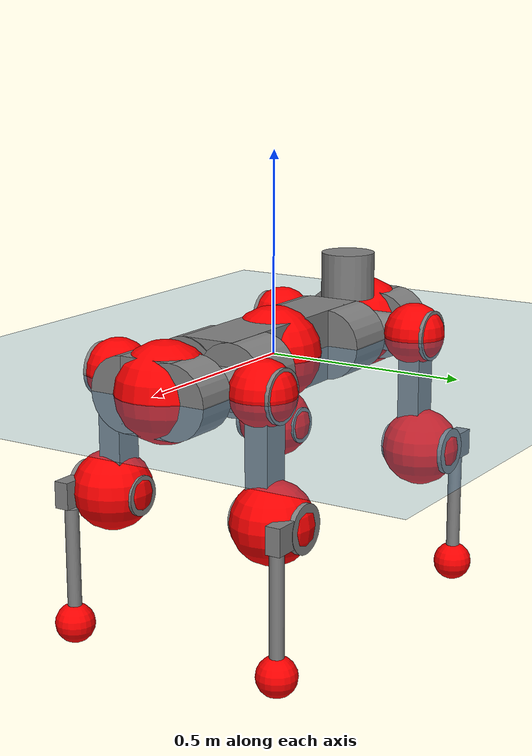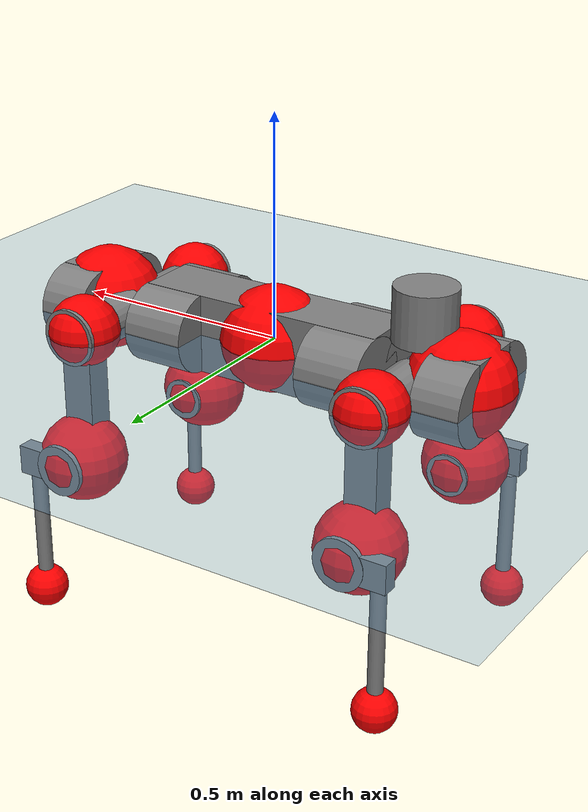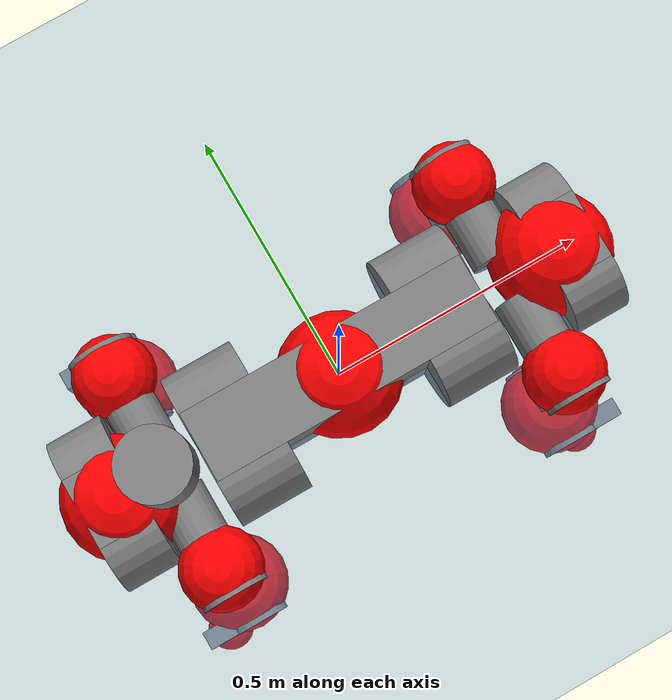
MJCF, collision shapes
<mujoco model="anymal_c">
  <compiler angle="radian" assetdir="assets" balanceinertia="true" inertiafromgeom="false"/>

  <option timestep="0.005" density="1.2" viscosity="2e-05"/>

  <size nkey="1"/>

  <visual>
    <quality shadowsize="8192"/>
    <map shadowclip="0.5"/>
  </visual>

  <default>
    <default class="/">
      <material specular="0" shininess="0.25"/>
      <geom contype="0" conaffinity="0" group="1" solref="-1000 -80"/>
      <site size="0.01 0.005 0.005" group="5"/>
      <general forcelimited="true" forcerange="-80 80" biastype="affine" gainprm="80" biasprm="0 -80 -2"/>
      <default class="anymal_c">
        <joint armature="0.01" damping="0.01" frictionloss="0.1"/>
        <default class="visual">
          <geom type="mesh" group="2"/>
          <default class="visual_zflip"/>
        </default>
        <default class="collision">
          <geom type="cylinder" group="3"/>
          <default class="foot">
            <geom size="0.03 0 0" type="sphere" condim="6" priority="1" friction="0.8 0.02 0.01" solimp="0.015 1 0.03"/>
          </default>
        </default>
      </default>
      <default class="reward_collision_sphere">
        <geom group="5" rgba="1 0 0 1"/>
      </default>
    </default>
  </default>

  <asset>
    <texture type="skybox" colorspace="auto" name="//unnamed_texture_0" builtin="gradient" rgb1="0.95 0.95 0.95" rgb2="0.95 0.95 0.95" width="100" height="600"/>
    <texture type="2d" colorspace="auto" name="texplane" builtin="checker" rgb1="0.345 0.575 0.748" rgb2="0.345 0.575 0.748" markrgb="1 1 1" width="512" height="512"/>
    <texture type="2d" colorspace="linear" name="base" file="base.png"/>
    <texture type="2d" colorspace="linear" name="top_shell" file="top_shell.png"/>
    <texture type="2d" colorspace="linear" name="bottom_shell" file="bottom_shell.png"/>
    <texture type="2d" colorspace="linear" name="remote" file="remote.png"/>
    <texture type="2d" colorspace="linear" name="hatch" file="hatch.png"/>
    <texture type="2d" colorspace="linear" name="handle" file="handle.png"/>
    <texture type="2d" colorspace="linear" name="face" file="face.png"/>
    <texture type="2d" colorspace="linear" name="battery" file="battery.png"/>
    <texture type="2d" colorspace="linear" name="lidar_cage" file="lidar_cage.png"/>
    <texture type="2d" colorspace="linear" name="depth_camera" file="depth_camera.png"/>
    <texture type="2d" colorspace="linear" name="wide_angle_camera" file="wide_angle_camera.png"/>
    <texture type="2d" colorspace="linear" name="lidar" file="lidar.png"/>
    <texture type="2d" colorspace="linear" name="drive" file="drive.png"/>
    <texture type="2d" colorspace="linear" name="hip_l" file="hip_l.png"/>
    <texture type="2d" colorspace="linear" name="shank_l" file="shank_l.png"/>
    <texture type="2d" colorspace="linear" name="foot" file="foot.png"/>
    <texture type="2d" colorspace="linear" name="thigh" file="thigh.png"/>
    <texture type="2d" colorspace="linear" name="shank_r" file="shank_r.png"/>
    <texture type="2d" colorspace="linear" name="hip_r" file="hip_r.png"/>
    <material name="MatPlane" class="/" texture="texplane" texuniform="true" texrepeat="2 2" specular="0.9" shininess="0.5"/>
    <material name="black_plastic" class="/" rgba="0.007 0.007 0.007 1"/>
    <material name="green" class="/" rgba="0.052 0.178 0.033 1"/>
    <material name="red" class="/" rgba="0.178 0.006 0.005 1"/>
    <material name="yellow" class="/" rgba="0.178 0.119 0.006 1"/>
    <material name="lwl" class="/" rgba="0.8 0.8 0.8 1"/>
    <material name="base" class="/" texture="base"/>
    <material name="top_shell" class="/" texture="top_shell"/>
    <material name="bottom_shell" class="/" texture="bottom_shell"/>
    <material name="hip_l" class="/" texture="hip_l"/>
    <material name="thigh" class="/" texture="thigh"/>
    <material name="shank_l" class="/" texture="shank_l"/>
    <material name="foot" class="/" texture="foot"/>
    <material name="hip_r" class="/" texture="hip_r"/>
    <material name="shank" class="/" texture="shank_r"/>
    <material name="hatch" class="/" texture="hatch"/>
    <material name="remote" class="/" texture="remote"/>
    <material name="handle" class="/" texture="handle"/>
    <material name="face" class="/" texture="face"/>
    <material name="depth_camera" class="/" texture="depth_camera"/>
    <material name="wide_angle_camera" class="/" texture="wide_angle_camera"/>
    <material name="battery" class="/" texture="battery"/>
    <material name="lidar_cage" class="/" texture="lidar_cage"/>
    <material name="lidar" class="/" texture="lidar"/>
    <material name="drive" class="/" texture="drive"/>
    <mesh name="base_0" class="/" file="base_0.obj"/>
    <mesh name="base_1" class="/" file="base_1.obj"/>
    <mesh name="base_2" class="/" file="base_2.obj"/>
    <mesh name="base_3" class="/" file="base_3.obj"/>
    <mesh name="base_4" class="/" file="base_4.obj"/>
    <mesh name="base_5" class="/" file="base_5.obj"/>
    <mesh name="top_shell" class="/" file="top_shell.obj"/>
    <mesh name="bottom_shell" class="/" file="bottom_shell.obj"/>
    <mesh name="remote" class="/" file="remote.obj"/>
    <mesh name="handle" class="/" file="handle.obj"/>
    <mesh name="face" class="/" file="face.obj"/>
    <mesh name="wide_angle_camera" class="/" file="wide_angle_camera.obj"/>
    <mesh name="depth_camera" class="/" file="depth_camera.obj"/>
    <mesh name="battery" class="/" file="battery.obj"/>
    <mesh name="lidar_cage" class="/" file="lidar_cage.obj"/>
    <mesh name="lidar" class="/" file="lidar.obj"/>
    <mesh name="drive" class="/" file="drive.obj"/>
    <mesh name="hip_l" class="/" file="hip_l.obj"/>
    <mesh name="thigh" class="/" file="thigh.obj"/>
    <mesh name="shank_l" class="/" file="shank_l.obj"/>
    <mesh name="foot" class="/" file="foot.obj"/>
    <mesh name="hip_r" class="/" file="hip_r.obj"/>
    <mesh name="hatch" class="/" file="hatch.obj"/>
    <mesh name="shank_r" class="/" file="shank_r.obj"/>
  </asset>

  <worldbody>
    <geom name="floor" class="/" size="100 100 0.125" type="plane" group="0" material="MatPlane"/>
    <light name="toplight_shadow" class="/" pos="0 0 5" dir="0.0990148 0.0990148 -0.990148" type="directional" ambient="0.04 0.04 0.04" diffuse="0.55 0.55 0.55" specular="0.12 0.12 0.12"/>
    <light name="toplight_fill" class="/" pos="0 0 5" dir="0.0990148 0.0990148 -0.990148" type="directional" castshadow="false" ambient="0.04 0.04 0.04" diffuse="0.3 0.3 0.3" specular="0.08 0.08 0.08"/>
    <body name="trunk" childclass="anymal_c" pos="5.73533e-05 -0.00115111 0.00101794" quat="1 0.00053747 0.000230454 9.01366e-05">
      <inertial pos="0.00174723 -0.00268558 0.0523523" quat="0.500166 0.499731 0.498598 0.501501" mass="18.2718" diaginertia="0.59789 0.399861 0.272741"/>
      <joint name="//unnamed_joint_0" type="free" armature="0" damping="0" frictionloss="0"/>
      <geom name="//unnamed_geom_1" class="visual" material="green" mesh="base_0"/>
      <geom name="//unnamed_geom_2" class="visual" material="yellow" mesh="base_1"/>
      <geom name="//unnamed_geom_3" class="visual" material="red" mesh="base_2"/>
      <geom name="//unnamed_geom_4" class="visual" material="black_plastic" mesh="base_3"/>
      <geom name="//unnamed_geom_5" class="visual" material="lwl" mesh="base_4"/>
      <geom name="//unnamed_geom_6" class="visual" material="base" mesh="base_5"/>
      <geom name="trunk_1" class="collision" size="0.287081 0.0692954 0.0890941" type="box"/>
      <geom name="trunk_2" class="collision" size="0.0890941 0.0717703" pos="0.217454 0.0645161 0" quat="0.707107 0 0.707107 0"/>
      <geom name="trunk_3" class="collision" size="0.0890941 0.0717703" pos="-0.217454 0.0645161 0" quat="0.707107 0 0.707107 0"/>
      <geom name="trunk_4" class="collision" size="0.0890941 0.0717703" pos="0.217454 -0.0645161 0" quat="0.707107 0 0.707107 0"/>
      <geom name="trunk_5" class="collision" size="0.0890941 0.0717703" pos="-0.217454 -0.0645161 0" quat="0.707107 0 0.707107 0"/>
      <geom name="//unnamed_geom_12" class="visual" material="top_shell" mesh="top_shell"/>
      <geom name="//unnamed_geom_13" class="visual" material="bottom_shell" mesh="bottom_shell"/>
      <geom name="//unnamed_geom_14" class="visual" material="remote" mesh="remote"/>
      <geom name="//unnamed_geom_15" class="visual" material="handle" mesh="handle"/>
      <geom name="//unnamed_geom_16" class="visual" pos="0.414412 0 0" quat="1 0 0 0" material="face" mesh="face"/>
      <geom name="trunk_6" class="collision" size="0.0544464 0.0692954 0.0890941" pos="0.4694 0 0" type="box"/>
      <geom name="//unnamed_geom_18" class="collision" size="0.0890941 0.0544464" pos="0.4694 0.0645161 0" quat="0.707107 0 0.707107 0"/>
      <geom name="//unnamed_geom_19" class="collision" size="0.0890941 0.0544464" pos="0.4694 -0.0645161 0" quat="0.707107 0 0.707107 0"/>
      <geom name="//unnamed_geom_20" class="visual" pos="0.461553 0 -0.0309812" quat="0.965926 0 0.258819 0" material="depth_camera" mesh="depth_camera"/>
      <geom name="//unnamed_geom_21" class="visual" pos="0.51289 0 0.0156939" material="wide_angle_camera" mesh="wide_angle_camera"/>
      <geom name="//unnamed_geom_22" class="visual_zflip" pos="-0.414412 0 0" quat="0 0 0 1" material="face" mesh="face"/>
      <geom name="trunk_7" class="collision" size="0.0544464 0.0692954 0.0890941" pos="-0.4694 0 0" quat="0 0 0 1" type="box"/>
      <geom name="//unnamed_geom_24" class="collision" size="0.0890941 0.0544464" pos="-0.4694 -0.0645161 0" quat="0 -0.707107 0 0.707107"/>
      <geom name="//unnamed_geom_25" class="collision" size="0.0890941 0.0544464" pos="-0.4694 0.0645161 0" quat="0 -0.707107 0 0.707107"/>
      <geom name="//unnamed_geom_26" class="visual" pos="-0.461553 0 -0.0309812" quat="0 -0.258819 0 0.965926" material="depth_camera" mesh="depth_camera"/>
      <geom name="//unnamed_geom_27" class="visual_zflip" pos="-0.51289 0 0.0156939" quat="0 0 0 1" material="wide_angle_camera" mesh="wide_angle_camera"/>
      <geom name="//unnamed_geom_28" class="visual" material="battery" mesh="battery"/>
      <geom name="//unnamed_geom_29" class="visual" pos="0 0.0694469 0.0300857" quat="0.683013 -0.183013 0.183013 0.683013" material="depth_camera" mesh="depth_camera"/>
      <geom name="//unnamed_geom_30" class="visual" pos="0 -0.0694469 0.0300857" quat="0.683013 0.183013 0.183013 -0.683013" material="depth_camera" mesh="depth_camera"/>
      <geom name="//unnamed_geom_31" class="visual" pos="-0.363922 0 0.0770544" quat="1 0 0 0" material="lidar_cage" mesh="lidar_cage"/>
      <geom name="trunk_8" class="collision" size="0.0692954 0.0593961" pos="-0.363922 0 0.139956"/>
      <geom name="//unnamed_geom_33" class="visual" pos="-0.363922 -3.06943e-05 0.149077" quat="0.707107 0 0 -0.707107" material="lidar" mesh="lidar"/>
      <geom name="//unnamed_geom_34" class="visual" pos="0.299836 0.0958975 -2.18559e-09" quat="0.258819 0.965926 0 0" material="drive" mesh="drive"/>
      <geom name="//unnamed_geom_35" class="visual" pos="0.299836 -0.0958975 2.18559e-09" quat="0.258819 -0.965926 0 0" material="drive" mesh="drive"/>
      <geom name="//unnamed_geom_36" class="visual" pos="-0.299836 0.0958975 2.18559e-09" quat="0 0 0.965926 -0.258819" material="drive" mesh="drive"/>
      <geom name="//unnamed_geom_37" class="visual" pos="-0.299836 -0.0958975 -2.18559e-09" quat="0 0 -0.965926 -0.258819" material="drive" mesh="drive"/>
      <geom name="//unnamed_geom_38" class="visual" pos="0.115975 0 0.0765302" quat="1 0 0 0" material="hatch" mesh="hatch"/>
      <geom name="//unnamed_geom_39" class="reward_collision_sphere" size="0.118792"/>
      <geom name="//unnamed_geom_40" class="reward_collision_sphere" size="0.118792" pos="0.449904 0 0"/>
      <geom name="//unnamed_geom_41" class="reward_collision_sphere" size="0.118792" pos="-0.449904 0 0"/>
      <site name="imu" pos="0.247737 0.0104615 0.0512909" size="0.00989935"/>
      <camera name="track" pos="0 -1.84332 0" quat="0.707107 0.707107 0 0" mode="trackcom"/>
      <camera name="ego_camera" pos="0.449904 0 -0.0419344" quat="-0.5 -0.5 0.5 0.5"/>
      <body name="LF_HIP" pos="0.30027 0.095895 -0.000214363" quat="0.258939 0.965894 0.000224021 -0.00014551">
        <inertial pos="0.0566896 -0.0158059 -0.00873591" quat="-0.128641 0.704552 -0.146854 0.68227" mass="2.67657" diaginertia="0.00574878 0.00324537 0.00409341"/>
        <joint name="LF_HAA" pos="0 0 0" axis="0.999999 0.000740759 0.000870453" range="-0.721026 0.505719" armature="0.00951103" damping="0.0132824" frictionloss="0.100412"/>
        <geom name="//unnamed_geom_42" class="visual" pos="0 -0.000128568 2.11172e-05" quat="0.258819 -0.965926 0 0" material="hip_l" mesh="hip_l"/>
        <geom name="//unnamed_geom_43" class="visual" pos="0.0598872 -0.0715824 -0.0422653" quat="0.183013 -0.683013 0.683013 0.183013" material="drive" mesh="drive"/>
        <geom name="//unnamed_geom_44" class="collision" size="0.0494967 0.0692954" pos="0.0598872 -0.0110229 -0.00723892" quat="-0.353553 -0.612372 0.612372 -0.353553"/>
        <body name="LF_THIGH" pos="0.0623132 -0.0672884 -0.0453908" quat="0.18293 -0.683425 0.682943 0.181811">
          <inertial pos="0.0311385 0.00272822 -0.256977" quat="0.992824 -0.00414263 -0.0832332 0.0857643" mass="2.97333" diaginertia="0.0292035 0.0204507 0.00528243"/>
          <joint name="LF_HFE" pos="0 0 0" axis="0.999969 -0.00503779 0.00606715" range="-3.17123 3.08746" armature="0.011209" damping="0.00624454" frictionloss="0.0971669"/>
          <geom name="//unnamed_geom_45" class="visual" pos="0.00155443 2.44942e-06 0" quat="0.707107 0 0 -0.707107" material="thigh" mesh="thigh"/>
          <geom name="//unnamed_geom_46" class="collision" size="0.0643458 0.0395974" pos="0.0399915 0 0" quat="0.5 0.5 -0.5 -0.5"/>
          <geom name="//unnamed_geom_47" class="collision" size="0.0371226 0.029698 0.139892" pos="0.0299936 0 -0.148148" quat="0.707107 0 0 -0.707107" type="box"/>
          <geom name="//unnamed_geom_48" class="visual" pos="0.100279 0 -0.298782" quat="1 0 0 0" material="drive" mesh="drive"/>
          <geom name="//unnamed_geom_49" class="collision" size="0.0494967 0.0692954" pos="0.0302935 0 -0.298782" quat="0.707107 0 0.707107 0"/>
          <geom name="//unnamed_geom_50" class="reward_collision_sphere" size="0.0791948" pos="0.0249947 0 0"/>
          <body name="LF_SHANK" pos="0.100189 -0.000482214 -0.297336" quat="1 -0.000127951 -0.000137632 -1.95491e-05">
            <inertial pos="0.00305829 -0.0572351 -0.0866108" quat="0.992505 -0.119097 -0.00320294 -0.027194" mass="0.557926" diaginertia="0.0100493 0.00626702 0.00139784"/>
            <joint name="LF_KFE" pos="0 0 0" axis="0.999996 0.00267407 -0.000113556" range="-3.08711 3.17746" armature="0.00973682" damping="0" frictionloss="0.0941787"/>
            <geom name="//unnamed_geom_51" class="visual" pos="0.000506867 0.00270264 0" quat="0.707107 0 0 -0.707107" material="shank_l" mesh="shank_l"/>
            <geom name="LF_kfe_act" class="collision" size="0.0593961 0.0197987" pos="0.0199957 0 0" quat="0.5 0.5 -0.5 -0.5"/>
            <geom name="//unnamed_geom_53" class="collision" size="0.0569203 0.0334103 0.0188088" pos="0.0199957 -0.0529945 0" quat="0.5 0.5 -0.5 -0.5" type="box"/>
            <geom name="//unnamed_geom_54" class="visual" pos="0.0130471 -0.0801889 -0.354314" quat="0.382683 0 0 -0.92388" material="foot" mesh="foot"/>
            <geom name="LF_calf" class="collision" size="0.0173239 0.13983" pos="0.0130472 -0.0810599 -0.177157" quat="0.707107 0 0 -0.707107"/>
            <geom name="LF_foot" class="foot" size="0.0306725" pos="0.0130472 -0.0810599 -0.330726" quat="0.707107 0 0 -0.707107"/>
            <geom name="//unnamed_geom_57" class="reward_collision_sphere" size="0.0989935" pos="-0.0499893 0 0"/>
            <geom name="//unnamed_geom_58" class="reward_collision_sphere" size="0.0494967" pos="0.0130472 -0.0810599 -0.330726"/>
            <site name="LF_foot" class="foot" pos="0.0130472 -0.0810599 -0.330726" quat="0.707107 0 0 -0.707107" size="0.00989935"/>
          </body>
        </body>
      </body>
      <body name="RF_HIP" pos="0.297678 -0.0960321 -0.00245021" quat="0.25842 -0.966033 0.000310437 3.30364e-05">
        <inertial pos="0.0569614 0.0138852 -0.00848323" quat="0.143042 0.683445 0.120894 0.705568" mass="2.72351" diaginertia="0.00575161 0.00326722 0.00412206"/>
        <joint name="RF_HAA" pos="0 0 0" axis="0.999991 0.000141605 0.00428387" range="-0.485289 0.768714" armature="0.0100716" damping="0.0121977" frictionloss="0.0937511"/>
        <geom name="//unnamed_geom_59" class="visual" pos="0 0.000128567 2.11172e-05" quat="0.258819 0.965926 0 0" material="hip_r" mesh="hip_r"/>
        <geom name="//unnamed_geom_60" class="visual" pos="0.0598872 0.0715824 -0.0422653" quat="0.183013 0.683013 0.683013 -0.183013" material="drive" mesh="drive"/>
        <geom name="//unnamed_geom_61" class="collision" size="0.0494967 0.0692954" pos="0.0598872 0.0110229 -0.00723892" quat="-0.353553 0.612372 0.612372 0.353553"/>
        <body name="RF_THIGH" pos="0.0608234 0.0687512 -0.0464488" quat="0.183043 0.683266 0.682762 -0.182973">
          <inertial pos="0.0309851 -0.00112915 -0.254786" quat="0.992541 -0.00676778 -0.0792174 0.0924228" mass="2.93176" diaginertia="0.0297013 0.01981 0.00527972"/>
          <joint name="RF_HFE" pos="0 0 0" axis="0.999997 0.00244512 -0.000453336" stiffness="0.0149304" range="-3.14605 3.12163" armature="0.00879334" damping="0.0219596" frictionloss="0.0949347"/>
          <geom name="//unnamed_geom_62" class="visual" pos="0.00155443 2.44942e-06 0" quat="0.707107 0 0 -0.707107" material="thigh" mesh="thigh"/>
          <geom name="//unnamed_geom_63" class="collision" size="0.0643458 0.0395974" pos="0.0399915 0 0" quat="0.5 0.5 0.5 0.5"/>
          <geom name="//unnamed_geom_64" class="collision" size="0.0371226 0.029698 0.139892" pos="0.0299936 0 -0.148148" quat="0.707107 0 0 0.707107" type="box"/>
          <geom name="//unnamed_geom_65" class="visual" pos="0.100279 0 -0.298782" quat="1 0 0 0" material="drive" mesh="drive"/>
          <geom name="//unnamed_geom_66" class="collision" size="0.0494967 0.0692954" pos="0.0302935 0 -0.298782" quat="0.707107 0 0.707107 0"/>
          <geom name="//unnamed_geom_67" class="reward_collision_sphere" size="0.0791948" pos="0.0249947 0 0"/>
          <body name="RF_SHANK" pos="0.10152 -0.000247686 -0.296622" quat="1 -0.000241991 -0.000371583 -0.000138939">
            <inertial pos="0.00490666 0.0575915 -0.0838553" quat="0.99295 0.115354 -0.00302562 0.0270906" mass="0.589411" diaginertia="0.0105806 0.00645833 0.00145115"/>
            <joint name="RF_KFE" pos="0 0 0" axis="0.999995 -0.00178583 0.00251035" range="-3.14878 3.11596" armature="0.01013" damping="0" frictionloss="0.102991"/>
            <geom name="//unnamed_geom_68" class="visual" pos="0.000506864 -0.00270263 0" quat="0.707107 0 0 0.707107" material="shank" mesh="shank_r"/>
            <geom name="RF_kfe_act" class="collision" size="0.0593961 0.0197987" pos="0.0199957 0 0" quat="0.5 0.5 0.5 0.5"/>
            <geom name="//unnamed_geom_70" class="collision" size="0.0569203 0.0334103 0.0188088" pos="0.0199957 0.0529945 0" quat="0.5 0.5 0.5 0.5" type="box"/>
            <geom name="//unnamed_geom_71" class="visual" pos="0.0130473 0.0801889 -0.354314" quat="0.382683 0 0 0.92388" material="foot" mesh="foot"/>
            <geom name="RF_calf" class="collision" size="0.0173239 0.13983" pos="0.0130472 0.0810599 -0.177157" quat="0.707107 0 0 0.707107"/>
            <geom name="RF_foot" class="foot" size="0.0267639" pos="0.0130472 0.0810599 -0.330726" quat="0.707107 0 0 0.707107"/>
            <geom name="//unnamed_geom_74" class="reward_collision_sphere" size="0.0989935" pos="-0.0499893 0 0"/>
            <geom name="//unnamed_geom_75" class="reward_collision_sphere" size="0.0494967" pos="0.0130472 0.0810599 -0.330726"/>
            <site name="RF_foot" class="foot" pos="0.0130472 0.0810599 -0.330726" quat="0.707107 0 0 0.707107" size="0.00989935"/>
          </body>
        </body>
      </body>
      <body name="LH_HIP" pos="-0.299352 0.0963511 0.001691" quat="0.000347232 -0.000176122 0.965898 -0.258922">
        <inertial pos="0.0559707 0.0149418 -0.00806483" quat="0.137874 0.68137 0.129779 0.707024" mass="2.63073" diaginertia="0.00596223 0.00330145 0.00422661"/>
        <joint name="LH_HAA" pos="0 0 0" axis="0.999988 0.00221803 0.00436188" stiffness="0.00285371" range="-0.451161 0.741155" armature="0.0103619" damping="0.00887808" frictionloss="0.107914"/>
        <geom name="//unnamed_geom_76" class="visual" pos="0 0.000128567 2.11172e-05" quat="-0.258819 -0.965926 0 0" material="hip_r" mesh="hip_r"/>
        <geom name="//unnamed_geom_77" class="visual" pos="0.0598872 0.0715824 -0.0422653" quat="0.183013 0.683013 0.683013 -0.183013" material="drive" mesh="drive"/>
        <geom name="//unnamed_geom_78" class="collision" size="0.0494967 0.0692954" pos="0.0598872 0.0110229 -0.00723892" quat="-0.353553 0.612372 0.612372 0.353553"/>
        <body name="LH_THIGH" pos="0.0594061 0.0678911 -0.043484" quat="0.184177 0.683251 0.682665 -0.182251">
          <inertial pos="0.0313568 0.00255659 -0.258295" quat="0.992278 0.00254224 -0.0844239 0.0908353" mass="2.87966" diaginertia="0.0300861 0.0199882 0.00545474"/>
          <joint name="LH_HFE" pos="0 0 0" axis="0.999911 0.0042439 -0.0126779" stiffness="0.00271984" range="-3.13711 3.1287" armature="0.0104241" damping="0.0180572" frictionloss="0.0969772"/>
          <geom name="//unnamed_geom_79" class="visual" pos="0.00155443 2.44942e-06 0" quat="0.707107 0 0 -0.707107" material="thigh" mesh="thigh"/>
          <geom name="//unnamed_geom_80" class="collision" size="0.0643458 0.0395974" pos="0.0399915 0 0" quat="0.5 0.5 -0.5 -0.5"/>
          <geom name="//unnamed_geom_81" class="collision" size="0.0371226 0.029698 0.139892" pos="0.0299936 0 -0.148148" quat="0.707107 0 0 -0.707107" type="box"/>
          <geom name="//unnamed_geom_82" class="visual" pos="0.100279 0 -0.298782" quat="1 0 0 0" material="drive" mesh="drive"/>
          <geom name="//unnamed_geom_83" class="collision" size="0.0494967 0.0692954" pos="0.0302935 0 -0.298782" quat="0.707107 0 0.707107 0"/>
          <geom name="//unnamed_geom_84" class="reward_collision_sphere" size="0.0791948" pos="0.0249947 0 0"/>
          <body name="LH_SHANK" pos="0.100733 -0.000832982 -0.298553" quat="1 -6.28761e-05 -0.000178845 1.01631e-05">
            <inertial pos="0.00516183 0.058398 -0.084845" quat="0.993079 0.114762 0.00123687 0.024953" mass="0.574347" diaginertia="0.00990138 0.0059828 0.00137563"/>
            <joint name="LH_KFE" pos="0 0 0" axis="0.999993 0.00355261 0.000646682" stiffness="0.00494989" range="-3.09138 3.13482" armature="0.0112153" damping="0.0156801" frictionloss="0.0941857"/>
            <geom name="//unnamed_geom_85" class="visual" pos="0.000506864 -0.00270263 0" quat="-0.707107 0 0 -0.707107" material="shank" mesh="shank_r"/>
            <geom name="LH_kfe_act" class="collision" size="0.0593961 0.0197987" pos="0.0199957 0 0" quat="0.5 0.5 -0.5 -0.5"/>
            <geom name="//unnamed_geom_87" class="collision" size="0.0569203 0.0334103 0.0188088" pos="0.0199957 0.0529945 0" quat="0.5 0.5 -0.5 -0.5" type="box"/>
            <geom name="//unnamed_geom_88" class="visual" pos="0.0130473 0.0801889 -0.354314" quat="-0.382683 0 0 -0.92388" material="foot" mesh="foot"/>
            <geom name="LH_calf" class="collision" size="0.0173239 0.13983" pos="0.0130472 0.0810599 -0.177157" quat="0.707107 0 0 -0.707107"/>
            <geom name="LH_foot" class="foot" size="0.0300844" pos="0.0130472 0.0810599 -0.330726" quat="0.707107 0 0 -0.707107"/>
            <geom name="//unnamed_geom_91" class="reward_collision_sphere" size="0.0989935" pos="-0.0499893 0 0"/>
            <geom name="//unnamed_geom_92" class="reward_collision_sphere" size="0.0494967" pos="0.0130472 0.0810599 -0.330726"/>
            <site name="LH_foot" class="foot" pos="0.0130472 0.0810599 -0.330726" quat="0.707107 0 0 -0.707107" size="0.00989935"/>
          </body>
        </body>
      </body>
      <body name="RH_HIP" pos="-0.302376 -0.0971261 0.000487957" quat="0.00128066 0.000674732 -0.965949 -0.258729">
        <inertial pos="0.0572014 -0.0131938 -0.00842485" quat="-0.127756 0.710627 -0.134717 0.678631" mass="2.69346" diaginertia="0.00584657 0.00322891 0.00430307"/>
        <joint name="RH_HAA" pos="0 0 0" axis="0.999996 -0.00131052 -0.00266097" stiffness="0.00252392" range="-0.704388 0.519338" armature="0.0111159" damping="0.0107428" frictionloss="0.102832"/>
        <geom name="//unnamed_geom_93" class="visual" pos="0 -0.000128568 2.11172e-05" quat="-0.258819 0.965926 0 0" material="hip_l" mesh="hip_l"/>
        <geom name="//unnamed_geom_94" class="visual" pos="0.0598872 -0.0715824 -0.0422653" quat="-0.183013 0.683013 -0.683013 -0.183013" material="drive" mesh="drive"/>
        <geom name="//unnamed_geom_95" class="collision" size="0.0494967 0.0692954" pos="0.0598872 -0.0110229 -0.00723892" quat="0.353553 0.612372 -0.612372 0.353553"/>
        <body name="RH_THIGH" pos="0.0585456 -0.0648777 -0.0439317" quat="-0.183383 0.682902 -0.683022 -0.183018">
          <inertial pos="0.0306887 -0.00179051 -0.257917" quat="0.993044 -0.00492745 -0.0800401 0.0862193" mass="2.90333" diaginertia="0.0298033 0.01989 0.00516319"/>
          <joint name="RH_HFE" pos="0 0 0" axis="0.999994 -0.00151977 -0.00321067" stiffness="0.00520619" range="-3.12971 3.19556" armature="0.00860928" damping="0.0184204" frictionloss="0.0966072"/>
          <geom name="//unnamed_geom_96" class="visual" pos="0.00155443 2.44942e-06 0" quat="0.707107 0 0 -0.707107" material="thigh" mesh="thigh"/>
          <geom name="//unnamed_geom_97" class="collision" size="0.0643458 0.0395974" pos="0.0399915 0 0" quat="0.5 0.5 0.5 0.5"/>
          <geom name="//unnamed_geom_98" class="collision" size="0.0371226 0.029698 0.139892" pos="0.0299936 0 -0.148148" quat="0.707107 0 0 0.707107" type="box"/>
          <geom name="//unnamed_geom_99" class="visual" pos="0.100279 0 -0.298782" quat="1 0 0 0" material="drive" mesh="drive"/>
          <geom name="//unnamed_geom_100" class="collision" size="0.0494967 0.0692954" pos="0.0302935 0 -0.298782" quat="0.707107 0 0.707107 0"/>
          <geom name="//unnamed_geom_101" class="reward_collision_sphere" size="0.0791948" pos="0.0249947 0 0"/>
          <body name="RH_SHANK" pos="0.100443 -0.000139968 -0.29876" quat="1 -0.000185167 -5.20102e-05 -8.31873e-06">
            <inertial pos="0.0051349 -0.0570666 -0.0842117" quat="0.993045 -0.114978 -0.000757977 -0.0253315" mass="0.580598" diaginertia="0.0100472 0.00615538 0.00141685"/>
            <joint name="RH_KFE" pos="0 0 0" axis="0.999998 -0.00147464 0.00131015" range="-3.0772 3.13294" armature="0.00974084" damping="0.0135176" frictionloss="0.100654"/>
            <geom name="//unnamed_geom_102" class="visual" pos="0.000506867 0.00270264 0" quat="0.707107 0 0 -0.707107" material="shank_l" mesh="shank_l"/>
            <geom name="RH_kfe_act" class="collision" size="0.0593961 0.0197987" pos="0.0199957 0 0" quat="0.5 0.5 0.5 0.5"/>
            <geom name="//unnamed_geom_104" class="collision" size="0.0569203 0.0334103 0.0188088" pos="0.0199957 -0.0529945 0" quat="0.5 0.5 0.5 0.5" type="box"/>
            <geom name="//unnamed_geom_105" class="visual" pos="0.0130471 -0.0801889 -0.354314" quat="0.382683 0 0 -0.92388" material="foot" mesh="foot"/>
            <geom name="RH_calf" class="collision" size="0.0173239 0.13983" pos="0.0130472 -0.0810599 -0.177157" quat="0.707107 0 0 0.707107"/>
            <geom name="RH_foot" class="foot" size="0.0306655" pos="0.0130472 -0.0810599 -0.330726" quat="0.707107 0 0 0.707107"/>
            <geom name="//unnamed_geom_108" class="reward_collision_sphere" size="0.0989935" pos="-0.0499893 0 0"/>
            <geom name="//unnamed_geom_109" class="reward_collision_sphere" size="0.0494967" pos="0.0130472 -0.0810599 -0.330726"/>
            <site name="RH_foot" class="foot" pos="0.0130472 -0.0810599 -0.330726" quat="0.707107 0 0 0.707107" size="0.00989935"/>
          </body>
        </body>
      </body>
    </body>
  </worldbody>

  <contact>
    <pair class="/" geom1="floor" geom2="LF_foot" name="//unnamed_contact_0"/>
    <pair class="/" geom1="floor" geom2="RF_foot" name="//unnamed_contact_1"/>
    <pair class="/" geom1="floor" geom2="LH_foot" name="//unnamed_contact_2"/>
    <pair class="/" geom1="floor" geom2="RH_foot" name="//unnamed_contact_3"/>
  </contact>

  <actuator>
    <general name="LF_HAA" class="/" joint="LF_HAA" forcerange="-80.4029 80.4029" gainprm="79.9351" biasprm="0 -79.9351 -1.94344"/>
    <general name="LF_HFE" class="/" joint="LF_HFE" forcerange="-78.9067 78.9067" gainprm="79.9351" biasprm="0 -79.9351 -1.94344"/>
    <general name="LF_KFE" class="/" joint="LF_KFE" forcerange="-80.4411 80.4411" gainprm="79.9351" biasprm="0 -79.9351 -1.94344"/>
    <general name="RF_HAA" class="/" joint="RF_HAA" forcerange="-80.0955 80.0955" gainprm="79.9351" biasprm="0 -79.9351 -1.94344"/>
    <general name="RF_HFE" class="/" joint="RF_HFE" forcerange="-81.4388 81.4388" gainprm="79.9351" biasprm="0 -79.9351 -1.94344"/>
    <general name="RF_KFE" class="/" joint="RF_KFE" forcerange="-74.7203 74.7203" gainprm="79.9351" biasprm="0 -79.9351 -1.94344"/>
    <general name="LH_HAA" class="/" joint="LH_HAA" forcerange="-82.7248 82.7248" gainprm="79.9351" biasprm="0 -79.9351 -1.94344"/>
    <general name="LH_HFE" class="/" joint="LH_HFE" forcerange="-79.5767 79.5767" gainprm="79.9351" biasprm="0 -79.9351 -1.94344"/>
    <general name="LH_KFE" class="/" joint="LH_KFE" forcerange="-77.1235 77.1235" gainprm="79.9351" biasprm="0 -79.9351 -1.94344"/>
    <general name="RH_HAA" class="/" joint="RH_HAA" forcerange="-80.6508 80.6508" gainprm="79.9351" biasprm="0 -79.9351 -1.94344"/>
    <general name="RH_HFE" class="/" joint="RH_HFE" forcerange="-77.3825 77.3825" gainprm="79.9351" biasprm="0 -79.9351 -1.94344"/>
    <general name="RH_KFE" class="/" joint="RH_KFE" forcerange="-86.7115 86.7115" gainprm="79.9351" biasprm="0 -79.9351 -1.94344"/>
  </actuator>

  <sensor>
    <gyro site="imu" name="imu_angular_velocity"/>
    <velocimeter site="imu" name="imu_linear_velocity"/>
    <framelinvel objtype="site" objname="LF_foot" name="LF_foot_global_linear_velocity"/>
    <framelinvel objtype="site" objname="RF_foot" name="RF_foot_global_linear_velocity"/>
    <framelinvel objtype="site" objname="LH_foot" name="LH_foot_global_linear_velocity"/>
    <framelinvel objtype="site" objname="RH_foot" name="RH_foot_global_linear_velocity"/>
  </sensor>

  <keyframe>
    <key name="home" qpos="0 0 0.55 1 0 0 0 0 0.4 -0.8 0 -0.4 0.8 0 -0.4 0.8 0 0.4 -0.8"/>
  </keyframe>
</mujoco>
